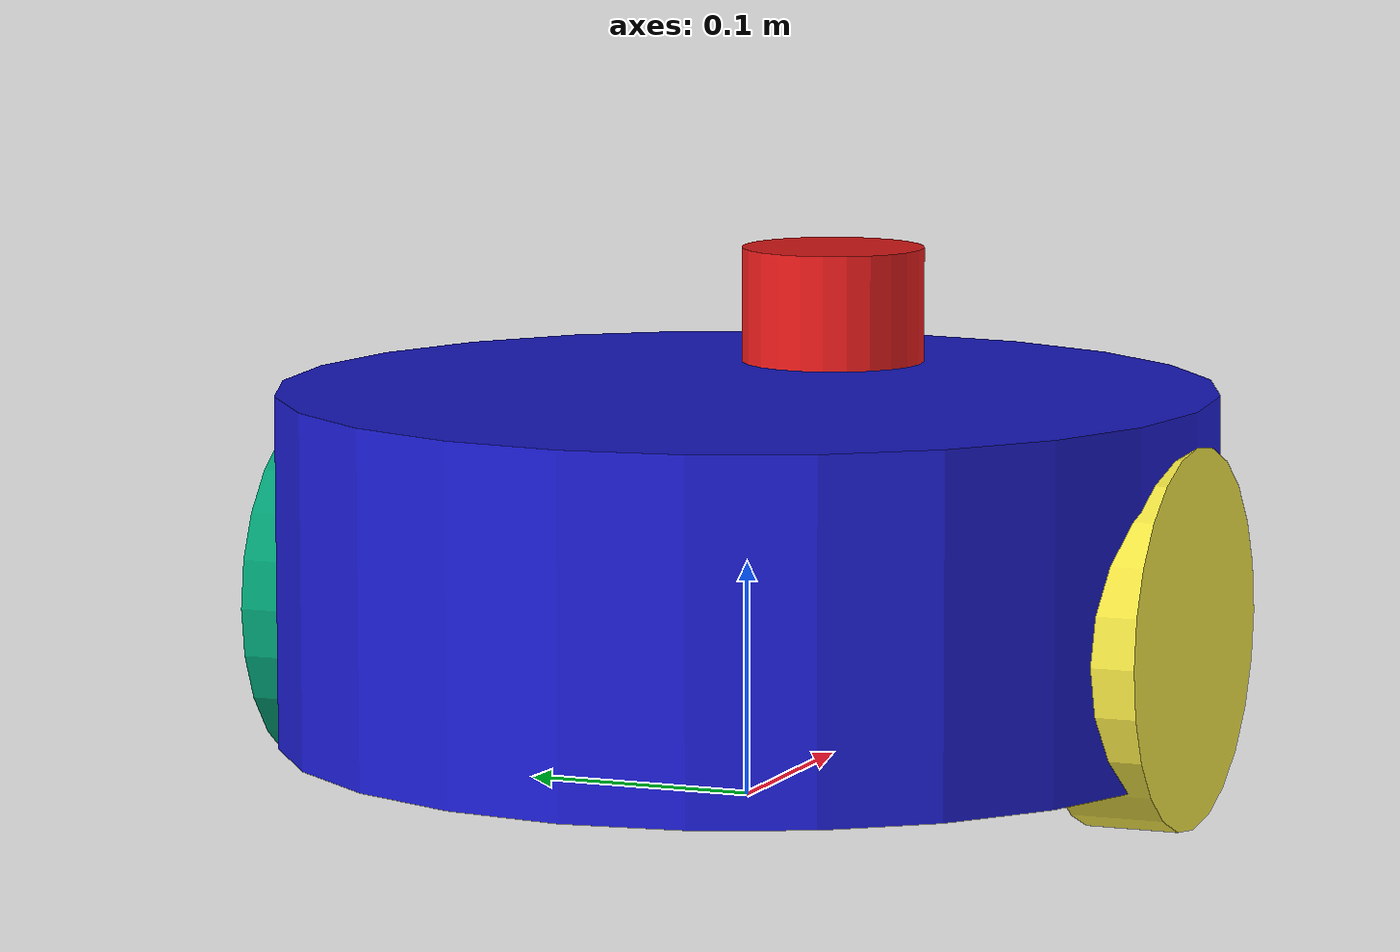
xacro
<?xml version="1.0"?>
<robot name="simple_bot" xmlns:xacro="http://www.ros.org/wiki/xacro">

  <!-- Base Link (Chassis Body) -->
  <link name="base_footprint"/>

  <joint name="base_joint" type="fixed">
    <parent link="base_footprint"/>
    <child link="base_link"/>
    <origin xyz="0 0 0.1" rpy="0 0 0"/>
  </joint>

  <link name="base_link">
    <visual>
      <geometry>
        <cylinder length="0.15" radius="0.2"/>
      </geometry>
      <material name="blue">
        <color rgba="0.1 0.1 0.8 1.0"/>
      </material>
    </visual>
    <collision>
      <geometry>
        <cylinder length="0.15" radius="0.2"/>
      </geometry>
    </collision>
    <inertial>
      <mass value="5.0"/>
      <inertia ixx="0.05" ixy="0.0" ixz="0.0" iyy="0.05" iyz="0.0" izz="0.1"/>
    </inertial>
  </link>

  <!-- Left Wheel -->
  <link name="left_wheel">
    <visual>
      <geometry>
        <cylinder length="0.04" radius="0.08"/>
      </geometry>
    </visual>
    <collision>
      <geometry>
        <cylinder length="0.04" radius="0.08"/>
      </geometry>
    </collision>
    <inertial>
      <mass value="0.5"/>
      <inertia ixx="0.001" ixy="0" ixz="0" iyy="0.001" iyz="0" izz="0.001"/>
    </inertial>
  </link>

  <joint name="left_wheel_joint" type="continuous">
    <parent link="base_link"/>
    <child link="left_wheel"/>
    <origin xyz="0 0.18 -0.02" rpy="-1.5708 0 0"/>
    <axis xyz="0 0 1"/>
  </joint>

  <!-- Right Wheel -->
  <link name="right_wheel">
    <visual>
      <geometry>
        <cylinder length="0.04" radius="0.08"/>
      </geometry>
    </visual>
    <collision>
      <geometry>
        <cylinder length="0.04" radius="0.08"/>
      </geometry>
    </collision>
    <inertial>
      <mass value="0.5"/>
      <inertia ixx="0.001" ixy="0" ixz="0" iyy="0.001" iyz="0" izz="0.001"/>
    </inertial>
  </link>

  <joint name="right_wheel_joint" type="continuous">
    <parent link="base_link"/>
    <child link="right_wheel"/>
    <origin xyz="0 -0.18 -0.02" rpy="-1.5708 0 0"/>
    <axis xyz="0 0 1"/>
  </joint>

  <!-- LiDAR Sensor -->
  <link name="laser_frame">
    <visual>
      <geometry>
        <cylinder length="0.05" radius="0.04"/>
      </geometry>
      <material name="red">
        <color rgba="0.9 0.1 0.1 1.0"/>
      </material>
    </visual>
  </link>

  <joint name="laser_joint" type="fixed">
    <parent link="base_link"/>
    <child link="laser_frame"/>
    <origin xyz="0.1 0 0.1" rpy="0 0 0"/>
  </joint>

  <!-- Gazebo Plugins (Differential Drive & Ray Laser Sensor) -->
  <gazebo>
    <plugin name="diff_drive" filename="libgazebo_ros_diff_drive.so">
      <ros>
        <remapping>cmd_vel:=cmd_vel</remapping>
        <remapping>odom:=odom</remapping>
      </ros>
      <left_joint>left_wheel_joint</left_joint>
      <right_joint>right_wheel_joint</right_joint>
      <wheel_separation>0.36</wheel_separation>
      <wheel_diameter>0.16</wheel_diameter>
      <max_wheel_torque>20</max_wheel_torque>
      <max_wheel_acceleration>1.0</max_wheel_acceleration>
      <publish_odom>true</publish_odom>
      <publish_odom_tf>true</publish_odom_tf>
      <publish_wheel_tf>false</publish_wheel_tf>
      <odometry_frame>odom</odometry_frame>
      <robot_base_frame>base_footprint</robot_base_frame>
    </plugin>
  </gazebo>

  <gazebo reference="laser_frame">
    <sensor type="ray" name="laser_sensor">
      <pose>0 0 0 0 0 0</pose>
      <visualize>true</visualize>
      <update_rate>10</update_rate>
      <ray>
        <scan>
          <horizontal>
            <samples>360</samples>
            <resolution>1</resolution>
            <min_angle>-3.14159</min_angle>
            <max_angle>3.14159</max_angle>
          </horizontal>
        </scan>
        <range>
          <min>0.15</min>
          <max>10.0</max>
        </range>
      </ray>
      <plugin name="laser_controller" filename="libgazebo_ros_ray_sensor.so">
        <ros>
          <remapping>~/out:=scan</remapping>
        </ros>
        <output_type>sensor_msgs/LaserScan</output_type>
        <frame_name>laser_frame</frame_name>
      </plugin>
    </sensor>
  </gazebo>

</robot>
